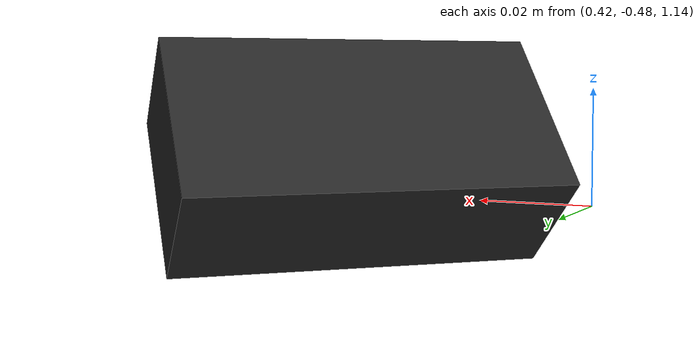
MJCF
<mujoco model="table_mesh_cam">
  <compiler angle="radian" meshdir="../../object_mesh/" texturedir="../../object_mesh/"/>

  <option timestep="0.001" gravity="0 0 -9.81" integrator="implicitfast"/>

  <visual>
    <headlight diffuse="0.6 0.6 0.6" ambient="0.3 0.3 0.3" specular="0 0 0"/>
    <rgba haze="0.15 0.25 0.35 1"/>
    <global azimuth="140" elevation="-25"/>
  </visual>

  <default>
    <geom contype="1" conaffinity="1" friction="0.8 0.005 0.0001"/>
  </default>

  <asset>
    <texture type="skybox" builtin="gradient" rgb1="0.3 0.5 0.7" rgb2="0 0 0" width="512" height="3072"/>
    <texture type="2d" name="groundplane" builtin="checker" mark="edge"
             rgb1="0.2 0.3 0.4" rgb2="0.1 0.2 0.3" markrgb="0.8 0.8 0.8"
             width="300" height="300"/>
    <material name="groundplane" texture="groundplane" texuniform="true" texrepeat="5 5" reflectance="0.2"/>
    <material name="table" rgba="0.55 0.45 0.35 1" reflectance="0.1"/>
  </asset>

  <worldbody>
    <light pos="0 0 2.5" dir="0 0 -1" diffuse="0.8 0.8 0.8" specular="0.3 0.3 0.3"/>
    <geom name="floor" type="plane" size="2 2 0.05" material="groundplane"/>

    <!-- Table top centered at z = 0.4, thickness 0.04 -->
    <geom name="table" type="box" size="0.4 0.4 0.02" pos="0 0 0.4"
          material="table" contype="1" conaffinity="1"/>

    <!-- Fixed RGB-D camera: diagonal overhead view of table center / bottle.
         MuJoCo cameras look along -Z; xyaxes set so -Z points at (0, 0, 0.45). -->
    <body name="upper_camera" pos="0.45 -0.45 1.15"
          xyaxes="0.7071 0.7071 0  -0.5232 0.5232 0.6727">
      <camera name="upper_camera" mode="fixed" pos="0 0 0" euler="0 0 0" fovy="55"/>
      <geom name="upper_camera_marker" type="box" size="0.03 0.01 0.015"
            rgba="0.15 0.15 0.15 1" contype="0" conaffinity="0"/>
    </body>
  </worldbody>
</mujoco>
